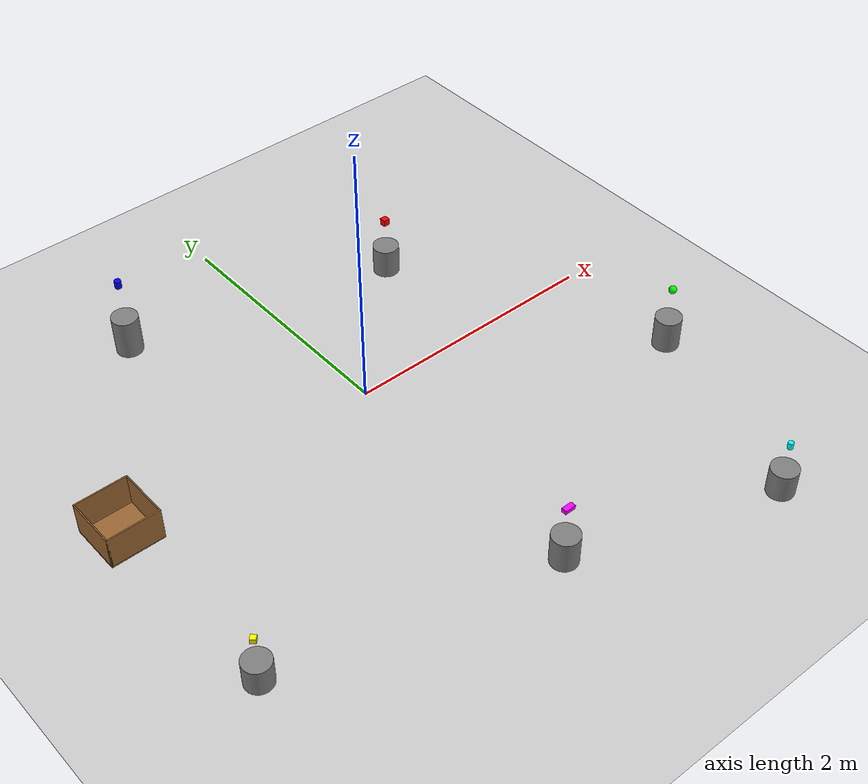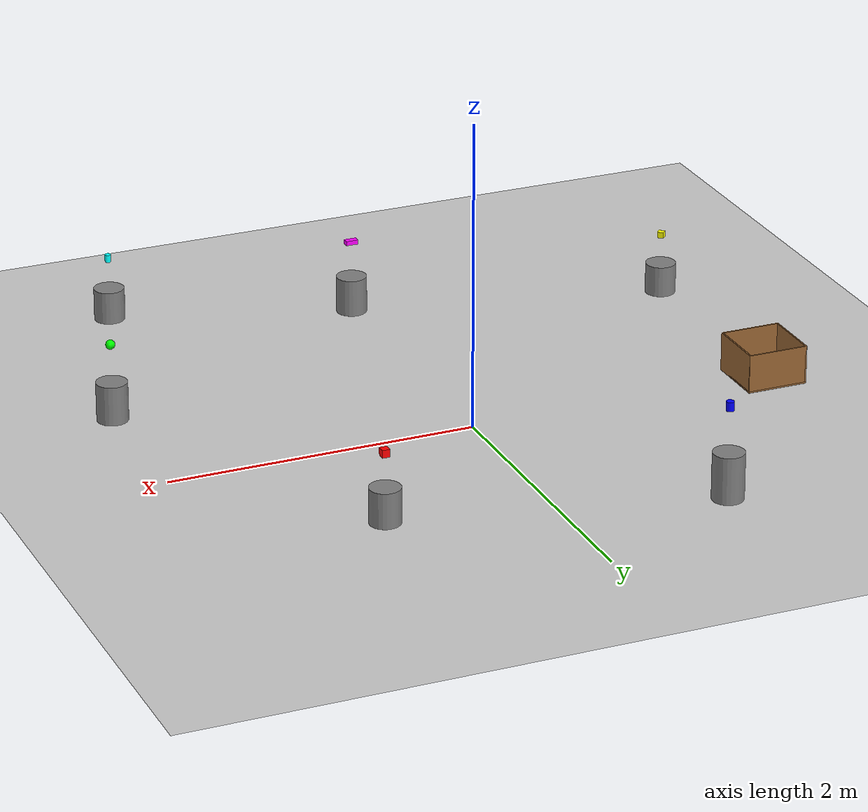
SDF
<?xml version="1.0" ?>
<sdf version="1.5">
  <world name="office_small">

    <physics name='default_physics' default='0' type='ode'>
      <gravity>0 0 -9.8066</gravity>
      <ode>
        <solver>
          <type>quick</type>
          <iters>10</iters>
          <sor>1.3</sor>
          <use_dynamic_moi_rescaling>0</use_dynamic_moi_rescaling>
        </solver>
        <constraints>
          <cfm>0</cfm>
          <erp>0.2</erp>
          <contact_max_correcting_vel>100</contact_max_correcting_vel>
          <contact_surface_layer>0.001</contact_surface_layer>
        </constraints>
      </ode>
      <max_step_size>0.004</max_step_size>
      <real_time_factor>1</real_time_factor>
      <real_time_update_rate>250</real_time_update_rate>
      <magnetic_field>6.0e-6 2.3e-5 -4.2e-5</magnetic_field>
    </physics>

    <light type="directional" name="sun">
      <cast_shadows>true</cast_shadows>
      <pose>0 0 10 0 0 0</pose>
      <diffuse>0.8 0.8 0.8 1</diffuse>
      <specular>0.2 0.2 0.2 1</specular>
      <attenuation>
        <range>1000</range>
        <constant>0.9</constant>
        <linear>0.01</linear>
        <quadratic>0.001</quadratic>
      </attenuation>
      <direction>-0.5 0.1 -0.9</direction>
    </light>

    <!-- Ground plane -->
    <include>
      <uri>model://ground_plane</uri>
      <pose>0 0 0 0 0 0</pose>
    </include>

    <!-- Pedestal 1 with cube on top -->
    <include>
      <uri>model://pedestal_1</uri>
      <pose>1 1 0 0 0 0</pose>
    </include>

    <include>
      <uri>model://cube_red</uri>
      <pose>1 1 0.4501 0 0 0</pose>
    </include>

    <!-- Pedestal 2 with cylinder on top -->
    <include>
      <uri>model://pedestal_2</uri>
      <pose>-1 1.5 0 0 0 0</pose>
    </include>

    <include>
      <uri>model://cylinder_blue</uri>
      <pose>-1 1.5 0.6001 0 0 0</pose>
    </include>

    <!-- Pedestal 3 with sphere on top -->
    <include>
      <uri>model://pedestal_3</uri>
      <pose>2 -1 0 0 0 0</pose>
    </include>

    <include>
      <uri>model://sphere_green</uri>
      <pose>2 -1 0.5001 0 0 0</pose>
    </include>

    <!-- Pedestal 4 with small cube on top -->
    <include>
      <uri>model://pedestal_4</uri>
      <pose>-2 -1.5 0 0 0 0</pose>
    </include>

    <include>
      <uri>model://cube_yellow</uri>
      <pose>-2 -1.5 0.4001 0 0 0.785</pose>
    </include>

    <!-- Pedestal 5 with rectangular box on top -->
    <include>
      <uri>model://pedestal_5</uri>
      <pose>0 -2 0 0 0 0</pose>
    </include>

    <include>
      <uri>model://box_magenta</uri>
      <pose>0 -2 0.4801 0 0 0</pose>
    </include>

    <!-- Pedestal 6 with another cylinder on top -->
    <include>
      <uri>model://pedestal_6</uri>
      <pose>1.5 -2.5 0 0 0 0</pose>
    </include>

    <include>
      <uri>model://cylinder_cyan</uri>
      <pose>1.5 -2.5 0.4201 0 0 0</pose>
    </include>

    <!-- Basket -->
    <include>
      <uri>model://basket</uri>
      <pose>-2 0 0 0 0 0</pose>
    </include>

  <plugin
    filename="gz-sim-physics-system"
    name="gz::sim::systems::Physics">
  </plugin>
  <plugin
    filename="gz-sim-user-commands-system"
    name="gz::sim::systems::UserCommands">
  </plugin>
    <plugin
    filename="gz-sim-scene-broadcaster-system"
    name="gz::sim::systems::SceneBroadcaster">
  </plugin>

  </world>
</sdf>

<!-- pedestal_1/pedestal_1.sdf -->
<sdf version="1.5">
  <model name="pedestal_1">
    <static>true</static>
    <link name="pedestal_link">
      <collision name="collision">
        <geometry>
          <cylinder>
            <radius>0.10</radius>
            <length>0.45</length>
          </cylinder>
        </geometry>
      </collision>
      <visual name="visual">
        <geometry>
          <cylinder>
            <radius>0.10</radius>
            <length>0.45</length>
          </cylinder>
        </geometry>
        <material>
          <ambient>0.5 0.5 0.5 1</ambient>
          <diffuse>0.5 0.5 0.5 1</diffuse>
        </material>
      </visual>
    </link>
  </model>
</sdf>

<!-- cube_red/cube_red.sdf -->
<sdf version="1.5">
  <model name="cube_red">
    <link name="link">
      <inertial>
        <mass>0.1</mass>
        <inertia>
          <ixx>0.00017</ixx>
          <iyy>0.00017</iyy>
          <izz>0.00017</izz>
        </inertia>
      </inertial>
      <collision name="collision">
        <geometry>
          <box>
            <size>0.05 0.05 0.05</size>
          </box>
        </geometry>
      </collision>
      <visual name="visual">
        <geometry>
          <box>
            <size>0.05 0.05 0.05</size>
          </box>
        </geometry>
        <material>
          <ambient>1 0 0 1</ambient>
          <diffuse>1 0 0 1</diffuse>
        </material>
      </visual>
    </link>
  </model>
</sdf>

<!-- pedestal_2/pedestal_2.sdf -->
<sdf version="1.5">
  <model name="pedestal_2">
    <static>true</static>
    <link name="pedestal_link">
      <collision name="collision">
        <geometry>
          <cylinder>
            <radius>0.10</radius>
            <length>0.60</length>
          </cylinder>
        </geometry>
      </collision>
      <visual name="visual">
        <geometry>
          <cylinder>
            <radius>0.10</radius>
            <length>0.60</length>
          </cylinder>
        </geometry>
        <material>
          <ambient>0.5 0.5 0.5 1</ambient>
          <diffuse>0.5 0.5 0.5 1</diffuse>
        </material>
      </visual>
    </link>
  </model>
</sdf>

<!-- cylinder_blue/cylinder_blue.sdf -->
<sdf version="1.5">
  <model name="cylinder_blue">
    <link name="link">
      <inertial>
        <mass>0.1</mass>
        <inertia>
          <ixx>0.00013</ixx>
          <iyy>0.00013</iyy>
          <izz>0.000063</izz>
        </inertia>
      </inertial>
      <collision name="collision">
        <geometry>
          <cylinder>
            <radius>0.025</radius>
            <length>0.06</length>
          </cylinder>
        </geometry>
      </collision>
      <visual name="visual">
        <geometry>
          <cylinder>
            <radius>0.025</radius>
            <length>0.06</length>
          </cylinder>
        </geometry>
        <material>
          <ambient>0 0 1 1</ambient>
          <diffuse>0 0 1 1</diffuse>
        </material>
      </visual>
    </link>
  </model>
</sdf>

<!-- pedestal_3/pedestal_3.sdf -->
<sdf version="1.5">
  <model name="pedestal_3">
    <static>true</static>
    <link name="pedestal_link">
      <collision name="collision">
        <geometry>
          <cylinder>
            <radius>0.10</radius>
            <length>0.50</length>
          </cylinder>
        </geometry>
      </collision>
      <visual name="visual">
        <geometry>
          <cylinder>
            <radius>0.10</radius>
            <length>0.50</length>
          </cylinder>
        </geometry>
        <material>
          <ambient>0.5 0.5 0.5 1</ambient>
          <diffuse>0.5 0.5 0.5 1</diffuse>
        </material>
      </visual>
    </link>
  </model>
</sdf>

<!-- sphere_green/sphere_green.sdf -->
<sdf version="1.5">
  <model name="sphere_green">
    <link name="link">
      <inertial>
        <mass>0.1</mass>
        <inertia>
          <ixx>0.0001</ixx>
          <iyy>0.0001</iyy>
          <izz>0.0001</izz>
        </inertia>
      </inertial>
      <collision name="collision">
        <geometry>
          <sphere>
            <radius>0.03</radius>
          </sphere>
        </geometry>
      </collision>
      <visual name="visual">
        <geometry>
          <sphere>
            <radius>0.03</radius>
          </sphere>
        </geometry>
        <material>
          <ambient>0 1 0 1</ambient>
          <diffuse>0 1 0 1</diffuse>
        </material>
      </visual>
    </link>
  </model>
</sdf>

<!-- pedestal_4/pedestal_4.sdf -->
<sdf version="1.5">
  <model name="pedestal_4">
    <static>true</static>
    <link name="pedestal_link">
      <collision name="collision">
        <geometry>
          <cylinder>
            <radius>0.10</radius>
            <length>0.40</length>
          </cylinder>
        </geometry>
      </collision>
      <visual name="visual">
        <geometry>
          <cylinder>
            <radius>0.10</radius>
            <length>0.40</length>
          </cylinder>
        </geometry>
        <material>
          <ambient>0.5 0.5 0.5 1</ambient>
          <diffuse>0.5 0.5 0.5 1</diffuse>
        </material>
      </visual>
    </link>
  </model>
</sdf>

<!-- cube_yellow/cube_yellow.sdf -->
<sdf version="1.5">
  <model name="cube_yellow">
    <link name="link">
      <inertial>
        <mass>0.08</mass>
        <inertia>
          <ixx>0.00011</ixx>
          <iyy>0.00011</iyy>
          <izz>0.00011</izz>
        </inertia>
      </inertial>
      <collision name="collision">
        <geometry>
          <box>
            <size>0.04 0.04 0.04</size>
          </box>
        </geometry>
      </collision>
      <visual name="visual">
        <geometry>
          <box>
            <size>0.04 0.04 0.04</size>
          </box>
        </geometry>
        <material>
          <ambient>1 1 0 1</ambient>
          <diffuse>1 1 0 1</diffuse>
        </material>
      </visual>
    </link>
  </model>
</sdf>

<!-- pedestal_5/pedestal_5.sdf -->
<sdf version="1.5">
  <model name="pedestal_5">
    <static>true</static>
    <link name="pedestal_link">
      <collision name="collision">
        <geometry>
          <cylinder>
            <radius>0.10</radius>
            <length>0.48</length>
          </cylinder>
        </geometry>
      </collision>
      <visual name="visual">
        <geometry>
          <cylinder>
            <radius>0.10</radius>
            <length>0.48</length>
          </cylinder>
        </geometry>
        <material>
          <ambient>0.5 0.5 0.5 1</ambient>
          <diffuse>0.5 0.5 0.5 1</diffuse>
        </material>
      </visual>
    </link>
  </model>
</sdf>

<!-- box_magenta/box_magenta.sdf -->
<sdf version="1.5">
  <model name="box_magenta">
    <link name="link">
      <inertial>
        <mass>0.12</mass>
        <inertia>
          <ixx>0.0002</ixx>
          <iyy>0.00013</iyy>
          <izz>0.00013</izz>
        </inertia>
      </inertial>
      <collision name="collision">
        <geometry>
          <box>
            <size>0.08 0.04 0.03</size>
          </box>
        </geometry>
      </collision>
      <visual name="visual">
        <geometry>
          <box>
            <size>0.08 0.04 0.03</size>
          </box>
        </geometry>
        <material>
          <ambient>1 0 1 1</ambient>
          <diffuse>1 0 1 1</diffuse>
        </material>
      </visual>
    </link>
  </model>
</sdf>

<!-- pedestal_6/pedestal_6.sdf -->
<sdf version="1.5">
  <model name="pedestal_6">
    <static>true</static>
    <link name="pedestal_link">
      <collision name="collision">
        <geometry>
          <cylinder>
            <radius>0.10</radius>
            <length>0.42</length>
          </cylinder>
        </geometry>
      </collision>
      <visual name="visual">
        <geometry>
          <cylinder>
            <radius>0.10</radius>
            <length>0.42</length>
          </cylinder>
        </geometry>
        <material>
          <ambient>0.5 0.5 0.5 1</ambient>
          <diffuse>0.5 0.5 0.5 1</diffuse>
        </material>
      </visual>
    </link>
  </model>
</sdf>

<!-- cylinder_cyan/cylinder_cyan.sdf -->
<sdf version="1.5">
  <model name="cylinder_cyan">
    <link name="link">
      <inertial>
        <mass>0.09</mass>
        <inertia>
          <ixx>0.00012</ixx>
          <iyy>0.00012</iyy>
          <izz>0.000051</izz>
        </inertia>
      </inertial>
      <collision name="collision">
        <geometry>
          <cylinder>
            <radius>0.02</radius>
            <length>0.05</length>
          </cylinder>
        </geometry>
      </collision>
      <visual name="visual">
        <geometry>
          <cylinder>
            <radius>0.02</radius>
            <length>0.05</length>
          </cylinder>
        </geometry>
        <material>
          <ambient>0 1 1 1</ambient>
          <diffuse>0 1 1 1</diffuse>
        </material>
      </visual>
    </link>
  </model>
</sdf>

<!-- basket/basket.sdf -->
<sdf version="1.5">
  <model name="basket">
    <static>true</static>

    <!-- Base -->
    <link name="base">
      <collision name="collision">
        <geometry>
          <box>
            <size>0.40 0.40 0.01</size>
          </box>
        </geometry>
      </collision>
      <visual name="visual">
        <geometry>
          <box>
            <size>0.40 0.40 0.01</size>
          </box>
        </geometry>
        <material>
          <ambient>0.6 0.4 0.2 1</ambient>
          <diffuse>0.6 0.4 0.2 1</diffuse>
        </material>
      </visual>
    </link>

    <!-- Front wall -->
    <link name="wall_front">
      <pose>0.195 0 0.075 0 0 0</pose>
      <collision name="collision">
        <geometry>
          <box>
            <size>0.01 0.40 0.35</size>
          </box>
        </geometry>
      </collision>
      <visual name="visual">
        <geometry>
          <box>
            <size>0.01 0.40 0.35</size>
          </box>
        </geometry>
        <material>
          <ambient>0.6 0.4 0.2 1</ambient>
          <diffuse>0.6 0.4 0.2 1</diffuse>
        </material>
      </visual>
    </link>

    <!-- Back wall -->
    <link name="wall_back">
      <pose>-0.195 0 0.075 0 0 0</pose>
      <collision name="collision">
        <geometry>
          <box>
            <size>0.01 0.40 0.35</size>
          </box>
        </geometry>
      </collision>
      <visual name="visual">
        <geometry>
          <box>
            <size>0.01 0.40 0.35</size>
          </box>
        </geometry>
        <material>
          <ambient>0.6 0.4 0.2 1</ambient>
          <diffuse>0.6 0.4 0.2 1</diffuse>
        </material>
      </visual>
    </link>

    <!-- Left wall -->
    <link name="wall_left">
      <pose>0 -0.195 0.075 0 0 0</pose>
      <collision name="collision">
        <geometry>
          <box>
            <size>0.40 0.01 0.35</size>
          </box>
        </geometry>
      </collision>
      <visual name="visual">
        <geometry>
          <box>
            <size>0.40 0.01 0.35</size>
          </box>
        </geometry>
        <material>
          <ambient>0.6 0.4 0.2 1</ambient>
          <diffuse>0.6 0.4 0.2 1</diffuse>
        </material>
      </visual>
    </link>

    <!-- Right wall -->
    <link name="wall_right">
      <pose>0 0.195 0.075 0 0 0</pose>
      <collision name="collision">
        <geometry>
          <box>
            <size>0.40 0.01 0.35</size>
          </box>
        </geometry>
      </collision>
      <visual name="visual">
        <geometry>
          <box>
            <size>0.40 0.01 0.35</size>
          </box>
        </geometry>
        <material>
          <ambient>0.6 0.4 0.2 1</ambient>
          <diffuse>0.6 0.4 0.2 1</diffuse>
        </material>
      </visual>
    </link>
  </model>
</sdf>
